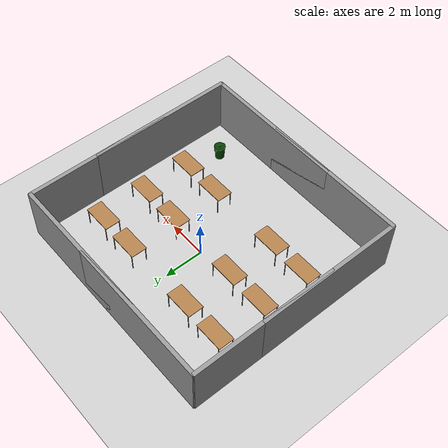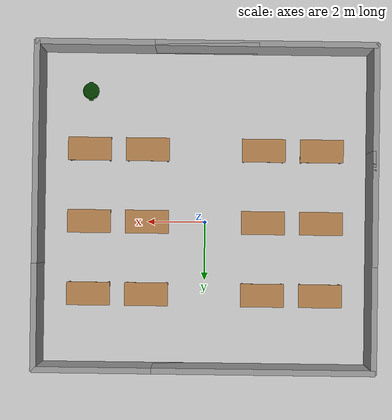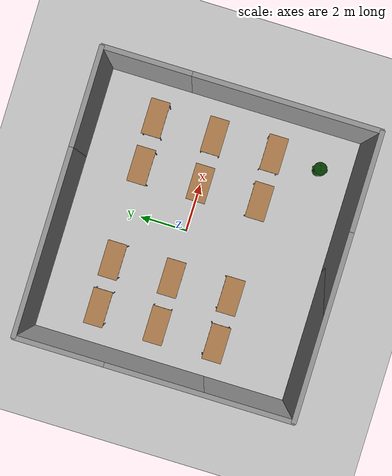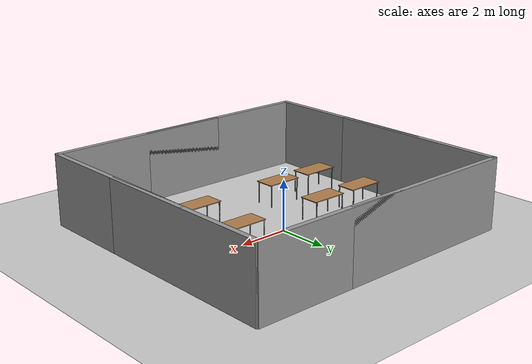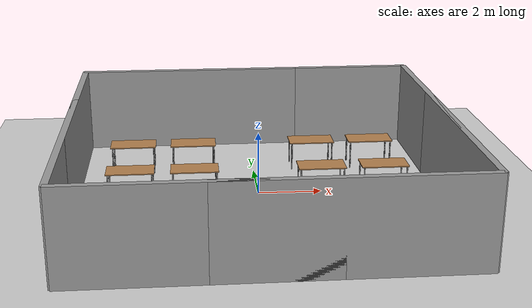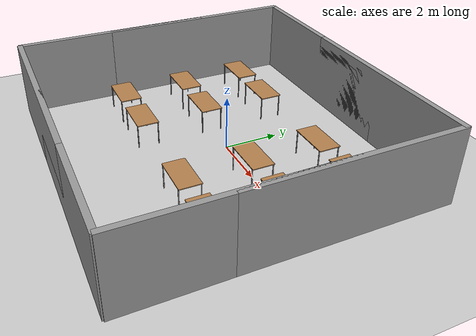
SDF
<sdf version="1.7">
 <world name="default">
  <light name="sun" type="directional">
   <pose>0 0 10 0 -0 0</pose>
   <diffuse>0.8 0.8 0.8 1</diffuse>
   <specular>0.2 0.2 0.2 1</specular>
   <attenuation>
    <range>1000</range>
    <constant>0.9</constant>
    <linear>0.01</linear>
    <quadratic>0.001</quadratic>
   </attenuation>
   <direction>-0.5 0.1 -0.9</direction>
  </light>
  <model name="ground_plane">
   <static>1</static>
   <link name="link">
    <collision name="collision">
     <geometry><plane><normal>0 0 1</normal><size>100 100</size></plane></geometry>
     <surface>
      <contact><collide_bitmask>65535</collide_bitmask></contact>
      <friction><ode><mu>100</mu><mu2>50</mu2></ode></friction>
     </surface>
    </collision>
    <visual name="visual">
     <cast_shadows>0</cast_shadows>
     <geometry><plane><normal>0 0 1</normal><size>100 100</size></plane></geometry>
     <material>
      <script><uri>file://media/materials/scripts/gazebo.material</uri><name>Gazebo/Grey</name></script>
     </material>
    </visual>
   </link>
  </model>
  <include><name>grey_wall_right1</name><uri>model://grey_wall</uri><pose>-2 -6 0 0 0 0</pose></include>
  <include><name>grey_wall_right2</name><uri>model://grey_wall</uri><pose>2 -6 0 0 0 0</pose></include>
  <include><name>grey_wall_left</name><uri>model://grey_wall</uri><pose>-2 5 0 0 0 0</pose></include>
  <include><name>grey_wall_left2</name><uri>model://grey_wall</uri><pose>2 5 0 0 0 0</pose></include>
  <include><name>grey_wall_front</name><uri>model://grey_wall</uri><pose>5.7 -2.3 0 0 0 1.5708</pose></include>
  <include><name>grey_wall_front2</name><uri>model://grey_wall</uri><pose>5.7 1.3 0 0 0 1.5708</pose></include>
  <include><name>grey_wall_back</name><uri>model://grey_wall</uri><pose>-5.7 -2.3 0 0 0 1.5708</pose></include>
  <include><name>grey_wall_back2</name><uri>model://grey_wall</uri><pose>-5.7 1.3 0 0 0 1.5708</pose></include>
  <include><name>table</name><uri>model://table</uri><pose>2 0 -0.1 0 0 0</pose></include>
  <include><name>table2</name><uri>model://table</uri><pose>4 0 -0.1 0 0 0</pose></include>
  <include><name>table3</name><uri>model://table</uri><pose>-2 0 -0.1 0 0 0</pose></include>
  <include><name>table4</name><uri>model://table</uri><pose>-4 0 -0.1 0 0 0</pose></include>
  <include><name>table5</name><uri>model://table</uri><pose>2 2.5 -0.1 0 0 0</pose></include>
  <include><name>table6</name><uri>model://table</uri><pose>4 2.5 -0.1 0 0 0</pose></include>
  <include><name>table7</name><uri>model://table</uri><pose>-2 2.5 -0.1 0 0 0</pose></include>
  <include><name>table8</name><uri>model://table</uri><pose>-4 2.5 -0.1 0 0 0</pose></include>
  <include><name>table9</name><uri>model://table</uri><pose>2 -2.5 -0.1 0 0 0</pose></include>
  <include><name>table10</name><uri>model://table</uri><pose>4 -2.5 -0.1 0 0 0</pose></include>
  <include><name>table11</name><uri>model://table</uri><pose>-2 -2.5 -0.1 0 0 0</pose></include>
  <include><name>table12</name><uri>model://table</uri><pose>-4 -2.5 -0.1 0 0 0</pose></include>
  <include><name>trash_can</name><uri>model://first_2015_trash_can</uri><pose>4 -4.5 0 0 0 0</pose></include>
  <gravity>0 0 -9.8</gravity>
  <magnetic_field>6e-06 2.3e-05 -4.2e-05</magnetic_field>
  <atmosphere type="adiabatic"/>
  <physics type="ode">
   <max_step_size>0.001</max_step_size>
   <real_time_factor>1</real_time_factor>
   <real_time_update_rate>1000</real_time_update_rate>
  </physics>
  <scene><ambient>0.4 0.4 0.4 1</ambient><background>0.7 0.7 0.7 1</background><shadows>1</shadows></scene>
  <spherical_coordinates>
   <surface_model>EARTH_WGS84</surface_model>
   <latitude_deg>0</latitude_deg>
   <longitude_deg>0</longitude_deg>
   <elevation>0</elevation>
   <heading_deg>0</heading_deg>
  </spherical_coordinates>
 </world>
</sdf>

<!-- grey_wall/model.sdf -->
<sdf version="1.5">
  <model name="grey_wall">
    <static>true</static>
    <link name="link">
      <pose>0 0 1.4 0 0 0</pose>
      <collision name="collision">
        <geometry>
          <box>
            <size>7.5 0.2 2.8</size>
          </box>
        </geometry>
      </collision>
      <visual name="visual">
        <cast_shadows>false</cast_shadows>
        <geometry>
          <box>
            <size>7.5 0.2 2.8</size>
          </box>
        </geometry>
        <material>
          <script>
            <uri>model://../model_source/models/grey_wall/materials/scripts</uri>
            <uri>model://../model_source/models/grey_wall/materials/textures</uri>
            <name>vrc/grey_wall</name>
          </script>
        </material>
      </visual>
    </link>
  </model>
</sdf>

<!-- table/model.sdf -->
<sdf version="1.5">
  <model name="table">
    <static>true</static>
    <link name="link">
      <collision name="surface">
        <pose>0 0 1.0 0 0 0</pose>
        <geometry>
          <box>
            <size>1.5 0.8 0.03</size>
          </box>
        </geometry>
        <surface>
          <friction>
            <ode>
              <mu>0.6</mu>
              <mu2>0.6</mu2>
            </ode>
          </friction>
        </surface>
      </collision>
      <visual name="visual1">
        <pose>0 0 1.0 0 0 0</pose>
        <geometry>
          <box>
            <size>1.5 0.8 0.03</size>
          </box>
        </geometry>
        <material>
          <script>
            <uri>model://media/materials/scripts/gazebo.material</uri>
            <name>Gazebo/Wood</name>
          </script>
        </material>
      </visual>
      <collision name="front_left_leg">
        <pose>0.68 0.38 0.5 0 0 0</pose>
        <geometry>
          <cylinder>
            <radius>0.02</radius>
            <length>1.0</length>
          </cylinder>
        </geometry>
      </collision>
      <visual name="front_left_leg">
        <pose>0.68 0.38 0.5 0 0 0</pose>
        <geometry>
          <cylinder>
            <radius>0.02</radius>
            <length>1.0</length>
          </cylinder>
        </geometry>
        <material>
          <script>
            <uri>model://media/materials/scripts/gazebo.material</uri>
            <name>Gazebo/Grey</name>
          </script>
        </material>
      </visual>
      <collision name="front_right_leg">
        <pose>0.68 -0.38 0.5 0 0 0</pose>
        <geometry>
          <cylinder>
            <radius>0.02</radius>
            <length>1.0</length>
          </cylinder>
        </geometry>
      </collision>
      <visual name="front_right_leg">
        <pose>0.68 -0.38 0.5 0 0 0</pose>
        <geometry>
          <cylinder>
            <radius>0.02</radius>
            <length>1.0</length>
          </cylinder>
        </geometry>
        <material>
          <script>
            <uri>model://media/materials/scripts/gazebo.material</uri>
            <name>Gazebo/Grey</name>
          </script>
        </material>
      </visual>
      <collision name="back_right_leg">
        <pose>-0.68 -0.38 0.5 0 0 0</pose>
        <geometry>
          <cylinder>
            <radius>0.02</radius>
            <length>1.0</length>
          </cylinder>
        </geometry>
      </collision>
      <visual name="back_right_leg">
        <pose>-0.68 -0.38 0.5 0 0 0</pose>
        <geometry>
          <cylinder>
            <radius>0.02</radius>
            <length>1.0</length>
          </cylinder>
        </geometry>
        <material>
          <script>
            <uri>model://media/materials/scripts/gazebo.material</uri>
            <name>Gazebo/Grey</name>
          </script>
        </material>
      </visual>
      <collision name="back_left_leg">
        <pose>-0.68 0.38 0.5 0 0 0</pose>
        <geometry>
          <cylinder>
            <radius>0.02</radius>
            <length>1.0</length>
          </cylinder>
        </geometry>
      </collision>
      <visual name="back_left_leg">
        <pose>-0.68 0.38 0.5 0 0 0</pose>
        <geometry>
          <cylinder>
            <radius>0.02</radius>
            <length>1.0</length>
          </cylinder>
        </geometry>
        <material>
          <script>
            <uri>model://media/materials/scripts/gazebo.material</uri>
            <name>Gazebo/Grey</name>
          </script>
        </material>
      </visual>
    </link>
  </model>
</sdf>

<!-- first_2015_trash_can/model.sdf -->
<sdf version="1.5">
  <model name="first_2015_trash_can">
    <link name="link">
      <inertial>
        <pose>0 0 0.3683 0 0 0</pose>
        <mass>4.83076</mass>
        <inertia>
          <ixx>0.281534052</ixx>
          <ixy>0</ixy>
          <ixz>0</ixz>
          <iyy>0.281534052</iyy>
          <iyz>0</iyz>
          <izz>0.126222831</izz>
        </inertia>
      </inertial>

      <visual name="visual">
        <geometry>
          <mesh>
            <uri>model://first_2015_trash_can/meshes/trash_can.dae</uri>
          </mesh>
        </geometry>
      </visual>

      <collision name="collision">
        <geometry>
          <mesh>
            <uri>model://first_2015_trash_can/meshes/trash_can.dae</uri>
          </mesh>
        </geometry>
      </collision>
    </link>
  </model>
</sdf>
